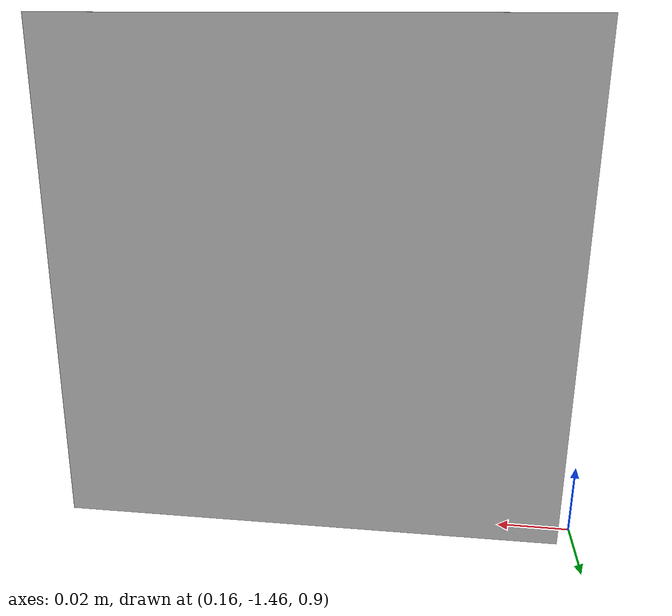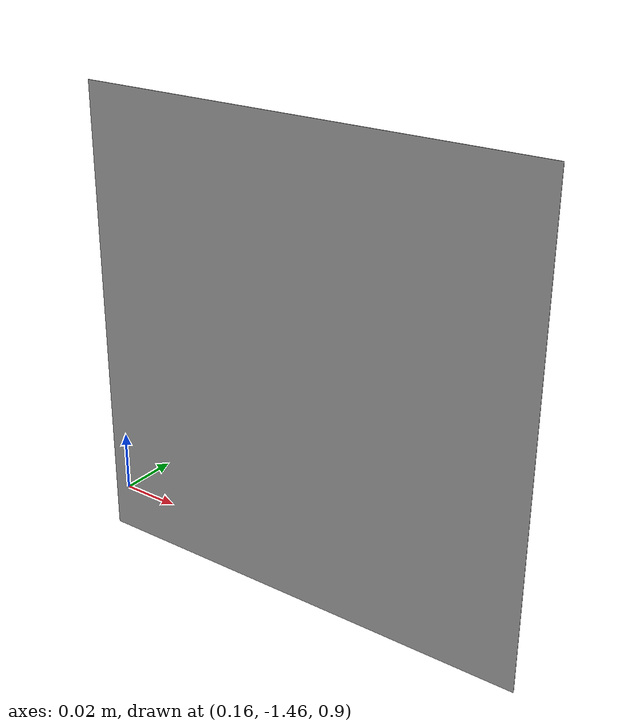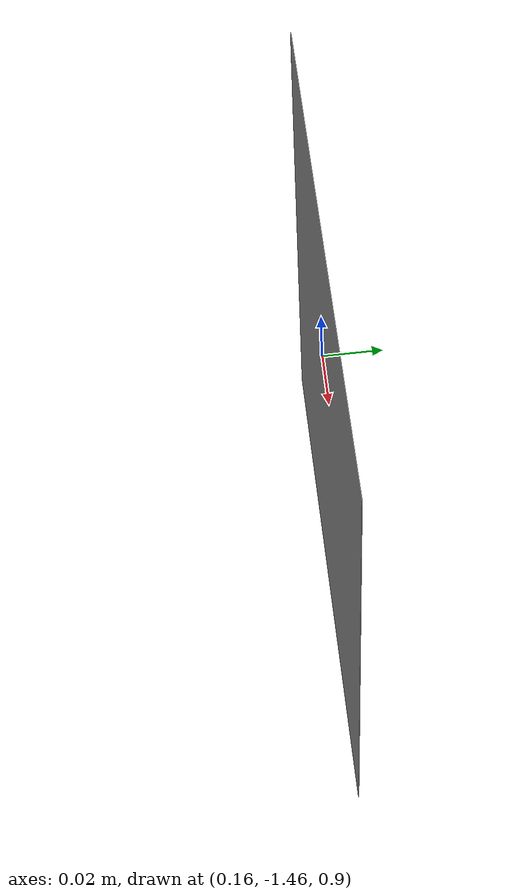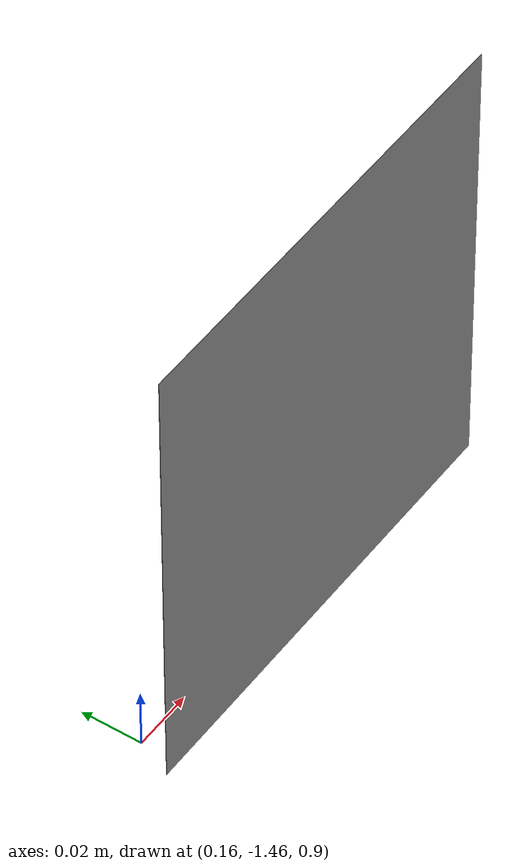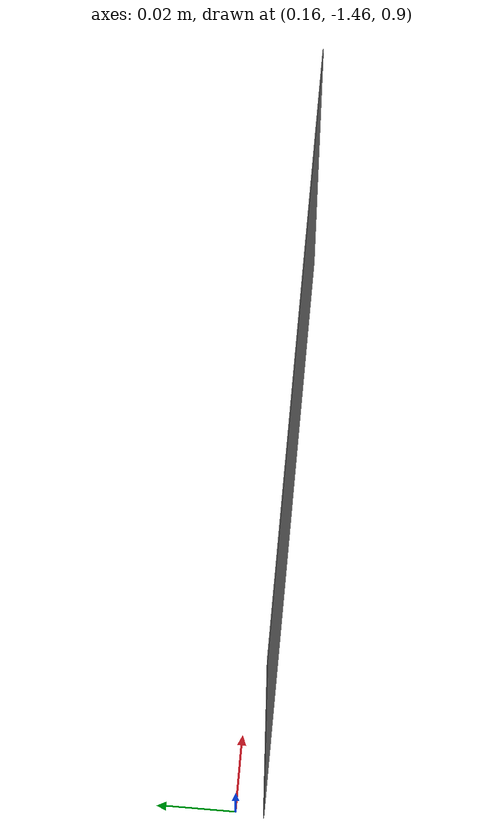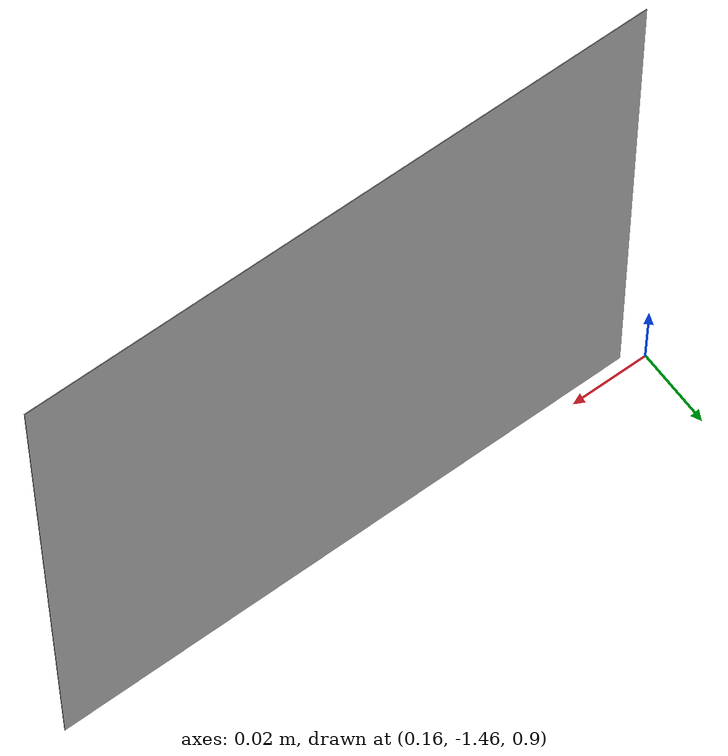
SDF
<sdf version="1.7">
 <world name="ur3_cubes">
  <gravity>0 0 0</gravity>
  <physics name="default_physics" default="0" type="ode">
   <max_step_size>0.001</max_step_size>
   <real_time_factor>1</real_time_factor>
   <real_time_update_rate>1000</real_time_update_rate>
  </physics>
  <plugin name="ros_link_attacher_plugin" filename="libgazebo_ros_link_attacher.so"/>
  <scene><ambient>0.4 0.4 0.4 1</ambient><background>0.4 0.43 0.67 1</background><shadows>1</shadows></scene>
  <light name="sun" type="directional">
   <pose>0 0 10 0 -0 0</pose>
   <diffuse>0.8 0.8 0.8 1</diffuse>
   <specular>0.2 0.2 0.2 1</specular>
   <attenuation>
    <range>1000</range>
    <constant>0.9</constant>
    <linear>0.01</linear>
    <quadratic>0.001</quadratic>
   </attenuation>
   <direction>-0.5 0.1 -0.9</direction>
   <spot><inner_angle>0</inner_angle><outer_angle>0</outer_angle><falloff>0</falloff></spot>
  </light>
  <model name="floor">
   <static>1</static>
   <link name="link">
    <collision name="collision">
     <geometry><plane><normal>0 0 1</normal><size>10 10</size></plane></geometry>
     <surface>
      <contact><collide_bitmask>65535</collide_bitmask></contact>
      <friction><ode><mu>100</mu><mu2>50</mu2></ode></friction>
     </surface>
    </collision>
    <visual name="visual">
     <cast_shadows>0</cast_shadows>
     <geometry><plane><normal>0 0 1</normal><size>100 100</size></plane></geometry>
     <material>
      <script><uri>model://floor/materials/scripts/checkboard.material</uri><name>CheckerTexture</name></script>
     </material>
    </visual>
   </link>
  </model>
  <magnetic_field>6e-06 2.3e-05 -4.2e-05</magnetic_field>
  <atmosphere type="adiabatic"/>
  <spherical_coordinates>
   <surface_model>EARTH_WGS84</surface_model>
   <latitude_deg>0</latitude_deg>
   <longitude_deg>0</longitude_deg>
   <elevation>0</elevation>
   <heading_deg>0</heading_deg>
  </spherical_coordinates>
  <model name="aruco_marker">
   <link name="link">
    <visual name="front_visual">
     <pose>5e-05 0 0 0 -0 0</pose>
     <geometry><box><size>0.0001 0.15 0.15</size></box></geometry>
     <material>
      <script>
       <uri>model://aruco_marker/materials/scripts</uri>
       <uri>model://aruco_marker/materials/textures</uri>
       <name>Marker</name>
      </script>
     </material>
    </visual>
    <visual name="rear_visual">
     <pose>-5e-05 0 0 0 -0 0</pose>
     <geometry><box><size>0.0001 0.15 0.15</size></box></geometry>
    </visual>
    <inertial>
     <inertia><ixx>1</ixx><ixy>0</ixy><ixz>0</ixz><iyy>1</iyy><iyz>0</iyz><izz>1</izz></inertia>
     <mass>1</mass>
    </inertial>
   </link>
   <pose>0.236491 -1.46691 0.965213 0 -0 1.5708</pose>
  </model>
 </world>
</sdf>
